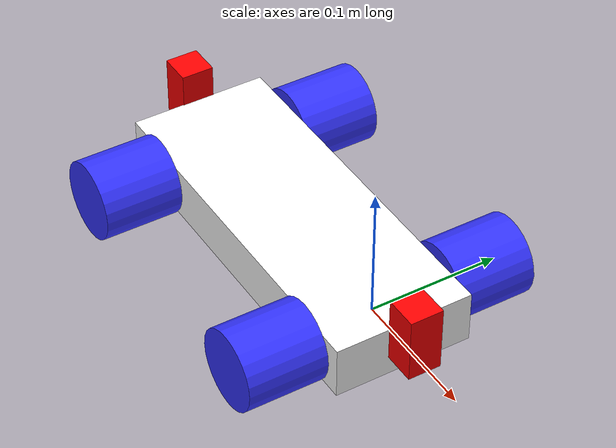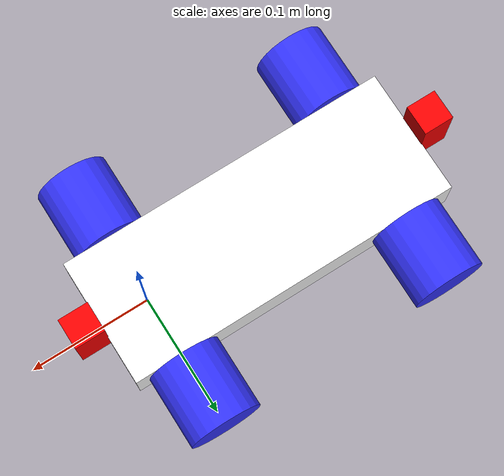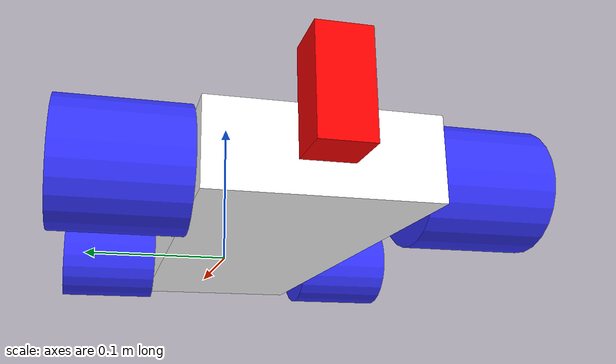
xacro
<?xml version="1.0"?>
<robot xmlns:xacro="http://www.ros.org/wiki/xacro">

    <xacro:include filename="inertial_macros.xacro"/>

    <material name="white">
        <color rgba="1 1 1 1"/>
    </material>

    <material name="black">
        <color rgba="0 0 0 1"/>
    </material>

    <material name="orange">
        <color rgba="1 0.3 0.1 0.8"/>
    </material>

    <material name="blue">
        <color rgba="0.2 0.2 1 1"/>
    </material>

    <material name="red">
        <color rgba="1 0 0 1"/>
    </material>

    <!-- ==========================CHASSI-->

    <!-- base link -->
    <link name="base_link">
    </link>

    <!-- chassi link -->
    <link name="chassi_link">
        <visual>
            <orign xyz="0 0 0.04 " rpy="0 0 0"/>
            <geometry>
                <box size="0.28 0.106 0.04"/>
            </geometry>
            <material name='white'/>
        </visual>
        <collision>
            <orign xyz="0 0 0.04 " rpy="0 0 0"/>
            <geometry>
                <box size="0.28 0.106 0.04"/>
            </geometry>
        </collision>
        <xacro:inertial_box mass="1" x="0.28" y="0.106" z="0.04">
            <orign xyz="0 0 0.04 " rpy="0 0 0"/>
        </xacro:inertial_box>
    </link>

    <gazebo reference="chassi_link">
        <material>Gazebo/White</material>
    </gazebo>

    <!-- chassi joint -->
    <joint name="chassi_joint" type='fixed'>
        <parent link="base_link"/>
        <child link="chassi_link"/>
        <origin xyz="-0.1 0 0"/>
    </joint>

    <!-- ========================== BACK LEFT WHEEL -->

    <!-- back left wheel link -->
    <link name="back_left_wheel">
        <visual>
            <geometry>
                <cylinder radius="0.03" length="0.06"/>
            </geometry>
            <material name="blue"/>
        </visual>
        <collision>
            <geometry>
                <cylinder radius="0.03" length="0.06"/>
            </geometry>
        </collision>
        <xacro:inertial_cylinder mass="0.075" radius="0.03" length="0.06">
            <origin xyz="0 0 0" rpy="0 0 0"/>
        </xacro:inertial_cylinder>
    </link>

    <gazebo reference="back_left_wheel">
        <material>Gazebo/Blue</material>
    </gazebo>

    <!-- back left wheel joint -->
    <joint name="back_left_wheel_joint" type="continuous">
        <parent link="base_link"/>
        <child link="back_left_wheel"/>
        <origin xyz="0 0.083 0" rpy="-${pi/2} 0 0"/>
        <axis xyz="0 0 1"/>
    </joint>

    <!-- =========================== BACK RIGHT WHEEL -->

    <!-- back right wheel link -->
    <link name="back_right_wheel">
        <visual>
            <geometry>
                <cylinder radius="0.03" length="0.06"/>
            </geometry>
            <material name="blue"/>
        </visual>
        <collision>
            <geometry>
                <cylinder radius="0.03" length="0.06"/>
            </geometry>
        </collision>
        <xacro:inertial_cylinder mass="0.075" radius="0.03" length="0.06">
            <origin xyz="0 0 0" rpy="0 0 0"/>
        </xacro:inertial_cylinder>
    </link>

    <gazebo reference="back_right_wheel">
        <material>Gazebo/Blue</material>
    </gazebo>

    <!-- back right wheel joint -->
    <joint name="back_right_wheel_joint" type="continuous">
        <parent link="base_link"/>
        <child link="back_right_wheel"/>
        <origin xyz="0 -0.083 0" rpy="${pi/2} 0 0"/>
        <axis xyz="0 0 -1"/>
    </joint>

    <!-- ========================== FRONT LEFT WHEEL -->

    <!-- front left wheel link -->
    <link name="front_left_wheel">
        <visual>
            <geometry>
                <cylinder radius="0.03" length="0.06"/>
            </geometry>
            <material name="blue"/>
        </visual>
        <collision>
            <geometry>
                <cylinder radius="0.03" length="0.06"/>
            </geometry>
        </collision>
        <xacro:inertial_cylinder mass="0.075" radius="0.03" length="0.06">
            <origin xyz="0 0 0" rpy="0 0 0"/>
        </xacro:inertial_cylinder>
    </link>

    <gazebo reference="front_left_wheel">
        <material>Gazebo/Blue</material>
    </gazebo>

    <!-- front left wheel joint -->
    <joint name="front_left_wheel_joint" type="continuous">
        <parent link="base_link"/>
        <child link="front_left_wheel"/>
        <origin xyz="-0.2 0.083 0" rpy="-${pi/2} 0 0"/>
        <axis xyz="0 0 1"/>
    </joint>

    <!-- =========================== FRONT RIGHT WHEEL -->

    <!-- front right wheel link -->
    <link name="front_right_wheel">
        <visual>
            <geometry>
                <cylinder radius="0.03" length="0.06"/>
            </geometry>
            <material name="blue"/>
        </visual>
        <collision>
            <geometry>
                <cylinder radius="0.03" length="0.06"/>
            </geometry>
        </collision>
        <xacro:inertial_cylinder mass="0.075" radius="0.03" length="0.06">
            <origin xyz="0 0 0" rpy="0 0 0"/>
        </xacro:inertial_cylinder>
    </link>

    <gazebo reference="front_right_wheel">
        <material>Gazebo/Blue</material>
    </gazebo>

    <!-- front right wheel joint -->
    <joint name="front_right_wheel_joint" type="continuous">
        <parent link="base_link"/>
        <child link="front_right_wheel"/>
        <origin xyz="-0.2 -0.083 0" rpy="${pi/2} 0 0"/>
        <axis xyz="0 0 -1"/>
    </joint>

    <!-- ================================== Ultrasonic Sensor (front)-->

    <joint name="laser_joint" type="fixed">
        <parent link="chassi_link"/>
        <child link="laser_frame"/>
        <origin xyz="0.152 0 0.02" rpy="0 0 0"/>
    </joint>

    <link name="laser_frame">
        <visual>
            <orign xyz="0.152 0 0.02" rpy="0 0 0"/>
            <geometry>
                <box size="0.025 0.025 0.05"/>
            </geometry>
            <material name='red'/>
        </visual>
        <collision>
            <orign xyz="0.152 0 0.02" rpy="0 0 0"/>
            <geometry>
                <box size="0.025 0.025 0.05"/>
            </geometry>
        </collision>
        <xacro:inertial_box mass="0.1" x="0.025" y="0.025" z="0.05">
            <orign xyz="0.152 0 0.02" rpy="0 0 0"/>
        </xacro:inertial_box>
    </link>

    <gazebo reference="laser_frame">
        <material>Gazebo/Red</material>
        <sensor name="laser" type="ray">
            <pose>0.15 0 0 0 0 0 </pose>
            <visualize>true</visualize>
            <update_rate>10</update_rate>
            <ray>
                <scan>
                    <horizontal>
                        <samples>10</samples>
                        <resolution>1.000000</resolution>
                        <min_angle>-0.15</min_angle>
                        <max_angle>0.15</max_angle>
                    </horizontal>
                    <vertical>
                        <samples>10</samples>
                        <resolution>1.000000</resolution>
                        <min_angle>-0.15</min_angle>
                        <max_angle>0.15</max_angle>
                    </vertical>
                </scan>
                <range>
                    <min>0.01</min>
                    <max>2</max>
                    <resolution>0.01</resolution>
                </range>
            </ray>
            <plugin name="laser_controller" filename="libgazebo_ros_ray_sensor.so">
                <ros>
                    <argument>~/out:=range</argument>
                </ros>
                <output_type>sensor_msgs/Range</output_type>
                <radiation_type>ultrasound</radiation_type>
                <frame_name>laser_frame</frame_name>
            </plugin>
        </sensor>
    </gazebo>

    <!-- ================================== Ultrasonic Sensor (back)-->

    <joint name="laser_joint_back" type="fixed">
        <parent link="chassi_link"/>
        <child link="laser_frame_back"/>
        <origin xyz="-0.152 0 0.02" rpy="0 0 ${pi}"/>
    </joint>

    <link name="laser_frame_back">
        <visual>
            <orign xyz="-0.152 0 0.02" rpy="0 0 0"/>
            <geometry>
                <box size="0.025 0.025 0.05"/>
            </geometry>
            <material name='red'/>
        </visual>
        <collision>
            <orign xyz="-0.152 0 0.02" rpy="0 0 0"/>
            <geometry>
                <box size="0.025 0.025 0.05"/>
            </geometry>
        </collision>
        <xacro:inertial_box mass="0.1" x="0.025" y="0.025" z="0.05">
            <orign xyz="-0.152 0 0.02" rpy="0 0 0"/>
        </xacro:inertial_box>
    </link>

    <gazebo reference="laser_frame_back">
        <material>Gazebo/Red</material>
        <sensor name="sonar_2" type="ray">
            <pose>0.15 0 0 0 0 0 </pose>
            <visualize>true</visualize>
            <update_rate>10</update_rate>
            <ray>
                <scan>
                    <horizontal>
                        <samples>10</samples>
                        <resolution>1.000000</resolution>
                        <min_angle>-0.15</min_angle>
                        <max_angle>0.15</max_angle>
                    </horizontal>
                    <vertical>
                        <samples>10</samples>
                        <resolution>1.000000</resolution>
                        <min_angle>-0.15</min_angle>
                        <max_angle>0.15</max_angle>
                    </vertical>
                </scan>
                <range>
                    <min>0.01</min>
                    <max>2</max>
                    <resolution>0.01</resolution>
                </range>
            </ray>
            <plugin name="laser_controller_2" filename="libgazebo_ros_ray_sensor.so">
                <ros>
                    <argument>~/out:=range2</argument>
                </ros>
                <output_type>sensor_msgs/Range</output_type>
                <radiation_type>ultrasound</radiation_type>
                <frame_name>laser_frame_back</frame_name>
            </plugin>
        </sensor>
    </gazebo>

</robot>

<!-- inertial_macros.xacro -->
<robot xmlns:xacro="http://www.ros.org/wiki/xacro">

    <!-- https://en.wikipedia.org/wiki/List_of_moments_of_inertia -->

    <xacro:macro name="inertial_box" params="mass x y z *origin">
        <inertial>
            <xacro:insert_block name="origin"/>
            <mass value="${mass}" />
            <inertia ixx="${(1/12) * mass * (y*y+z*z)}" ixy="0.0" ixz="0.0"
                    iyy="${(1/12) * mass * (x*x+z*z)}" iyz="0.0"
                    izz="${(1/12) * mass * (x*x+y*y)}" />
        </inertial>
    </xacro:macro>

    <xacro:macro name="inertial_cylinder" params="mass length radius *origin">
        <inertial>
            <xacro:insert_block name="origin"/>
            <mass value="${mass}" />
            <inertia ixx="${(1/12) * mass * (3*radius*radius + length*length)}" ixy="0.0" ixz="0.0"
                    iyy="${(1/12) * mass * (3*radius*radius + length*length)}" iyz="0.0"
                    izz="${(1/2) * mass * (radius*radius)}" />
        </inertial>
    </xacro:macro>

</robot>
